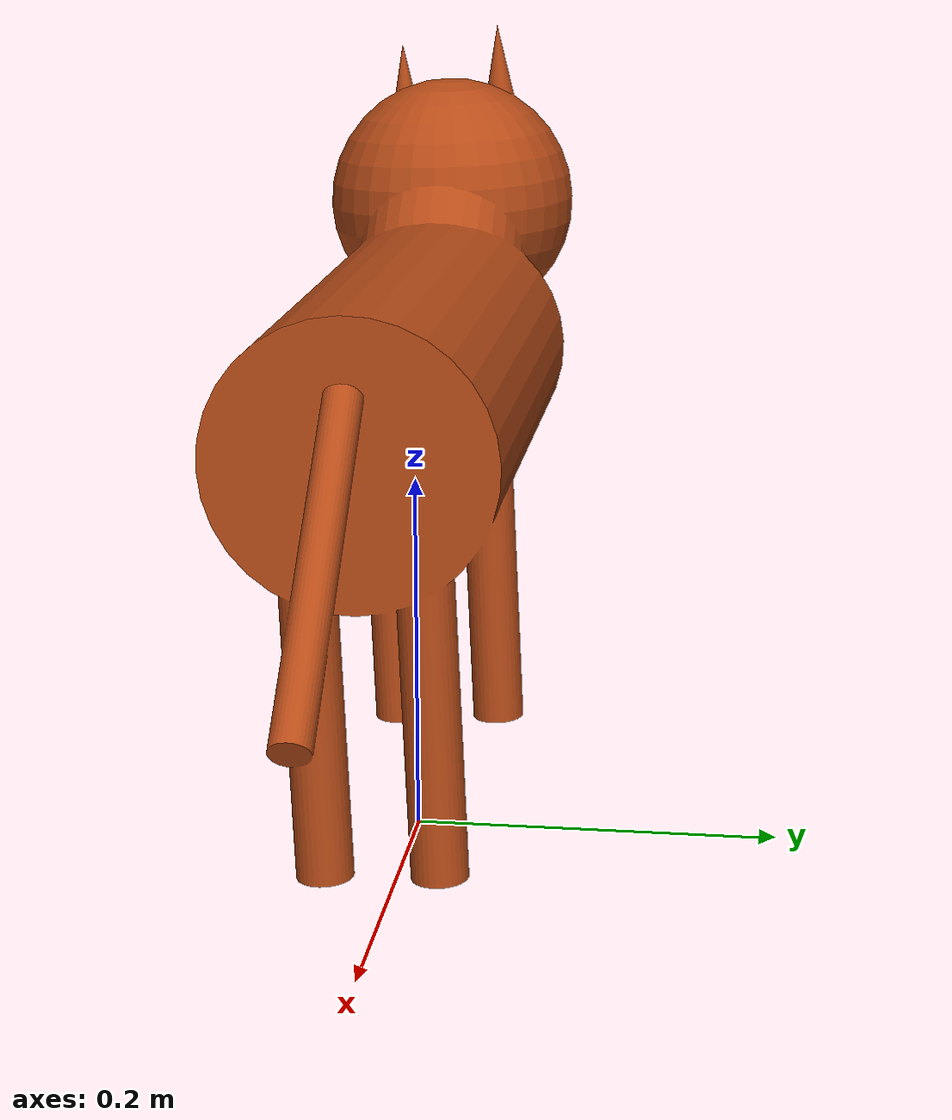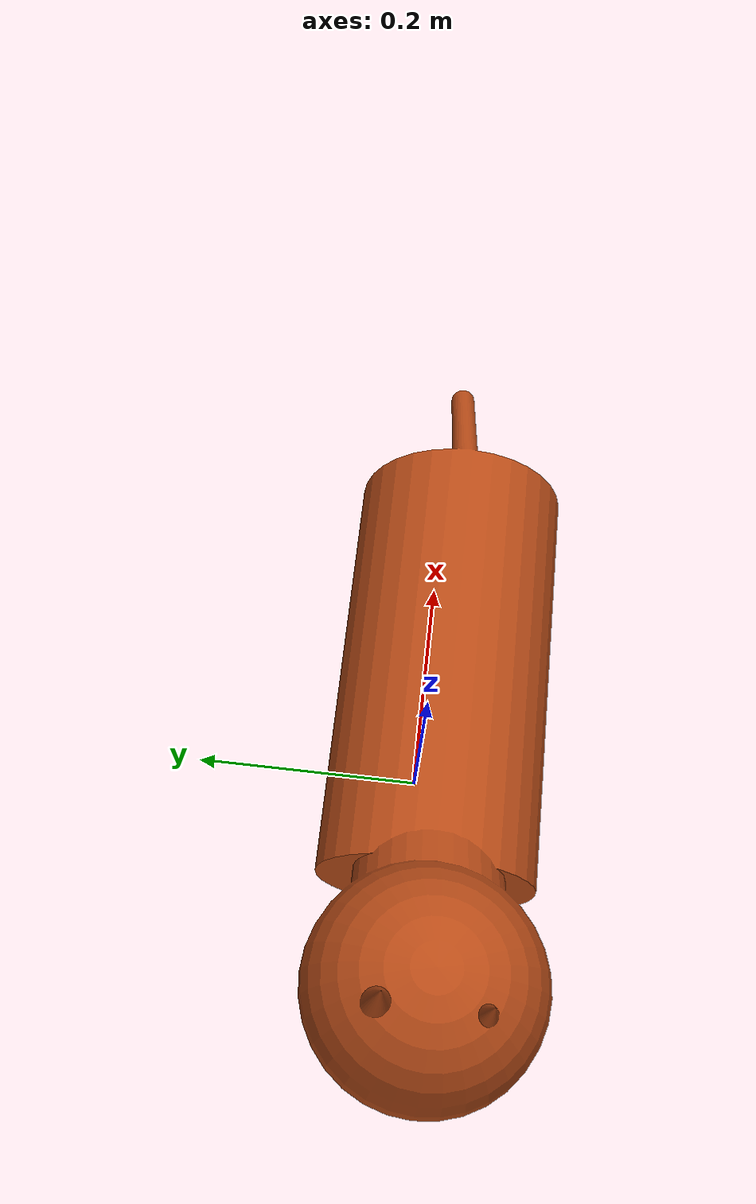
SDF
<?xml version="1.0" ?>
<sdf version="1.4">
  <model name="cat">
    <link name="link">
      <inertial>
        <pose>0 -0.1 0.95 0 0 0</pose>
        <mass>4.0</mass>
        <inertia>
          <ixx>1</ixx>
          <ixy>0</ixy>
          <ixz>0</ixz>
          <iyy>1</iyy>
          <iyz>0</iyz>
          <izz>1</izz>
        </inertia>
      </inertial>
      <collision name="cat">
        <pose>0 0 0.02 0.04 0 0</pose>
        <geometry>
          <mesh>
            <uri>model://cat/meshes/cat.dae</uri>
          </mesh>
        </geometry>
      </collision>

      <visual name="cat">
        <pose>0 0 0.02 0.04 0 0</pose>
        <geometry>
          <mesh>
            <uri>model://cat/meshes/cat.dae</uri>
          </mesh>
        </geometry>
      </visual>
    </link>
  </model>
</sdf>
